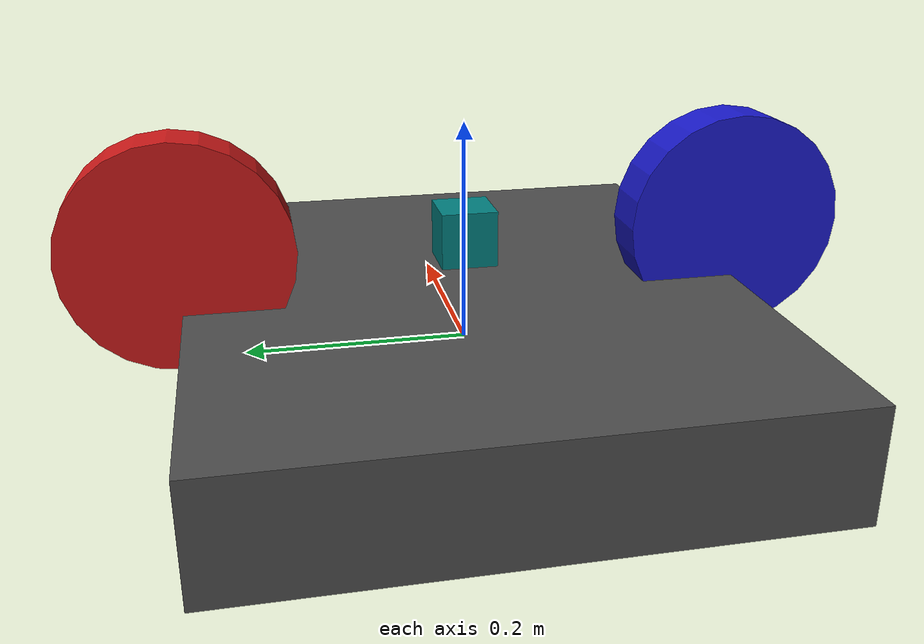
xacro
<?xml version="1.0"?>
<robot name="two_wheel_robot" xmlns:xacro="http://ros.org/wiki/xacro">

    <!-- Basic robot structure -->
    <xacro:property name="wheel_radius" value="0.1" />
    <xacro:property name="wheel_width" value="0.05" />
    <xacro:property name="base_width" value="0.5" />
    <xacro:property name="base_length" value="0.6" />

    <!-- Robot base -->
    <link name="base_link">
        <visual>
            <geometry>
                <box size="${base_length} ${base_width} 0.1" />
            </geometry>
            <material>
                <color rgba="0.3 0.3 0.3 1.0" />
            </material>
        </visual>
    </link>

    <!-- Left Wheel -->
    <link name="left_wheel">
        <visual>
            <geometry>
                <cylinder radius="${wheel_radius}" length="${wheel_width}" />
            </geometry>
            <material>
                <color rgba="0.8 0.1 0.1 1.0" />
            </material>
            <origin xyz="0 0 ${wheel_radius}" rpy="0 1.5708 0" />
        </visual>
    </link>

    <!-- Right Wheel -->
    <link name="right_wheel">
        <visual>
            <geometry>
                <cylinder radius="${wheel_radius}" length="${wheel_width}" />
            </geometry>
            <material>
                <color rgba="0.1 0.1 0.8 1.0" />
            </material>
            <origin xyz="0 0 ${wheel_radius}" rpy="0 1.5708 0" />
        </visual>
    </link>

    <!-- Joints -->
    <joint name="left_wheel_joint" type="continuous">
        <parent link="base_link" />
        <child link="left_wheel" />
        <origin xyz="0 ${base_width/2} 0" />
        <axis xyz="0 1 0" />
    </joint>

    <joint name="right_wheel_joint" type="continuous">
        <parent link="base_link" />
        <child link="right_wheel" />
        <origin xyz="0 -${base_width/2} 0" />
        <axis xyz="0 1 0" />
    </joint>

    <!-- IMU Sensor -->
    <link name="imu_link">
        <inertial>
            <origin xyz="0 0 0" rpy="0 0 0" />
            <mass value="0.01" />
            <inertia ixx="0.0001" ixy="0.0" ixz="0.0" iyy="0.0001" iyz="0.0" izz="0.0001" />
        </inertial>
        <visual>
            <geometry>
                <box size="0.05 0.05 0.05" />
            </geometry>
            <material>
                <color rgba="0.0 0.5 0.5 1.0" />
            </material>
            <origin xyz="0 0 0" rpy="0 0 0" />
        </visual>
    </link>

    <joint name="imu_joint" type="fixed">
        <parent link="base_link" />
        <child link="imu_link" />
        <origin xyz="0 0 0.1" rpy="0 0 0" />
    </joint>

    <!-- Gazebo IMU Plugin -->
    <gazebo>
        <plugin name="gazebo_ros_imu" filename="libgazebo_ros_imu.so">
            <ros>
                <namespace>/</namespace>
                <remapping>
                    <from>imu/data</from>
                    <to>/imu/data</to>
                </remapping>
            </ros>
            <imu>
                <topicName>imu/data</topicName>
                <frameName>imu_link</frameName>
                <update_rate>50</update_rate>
            </imu>
        </plugin>
    </gazebo>

</robot>
